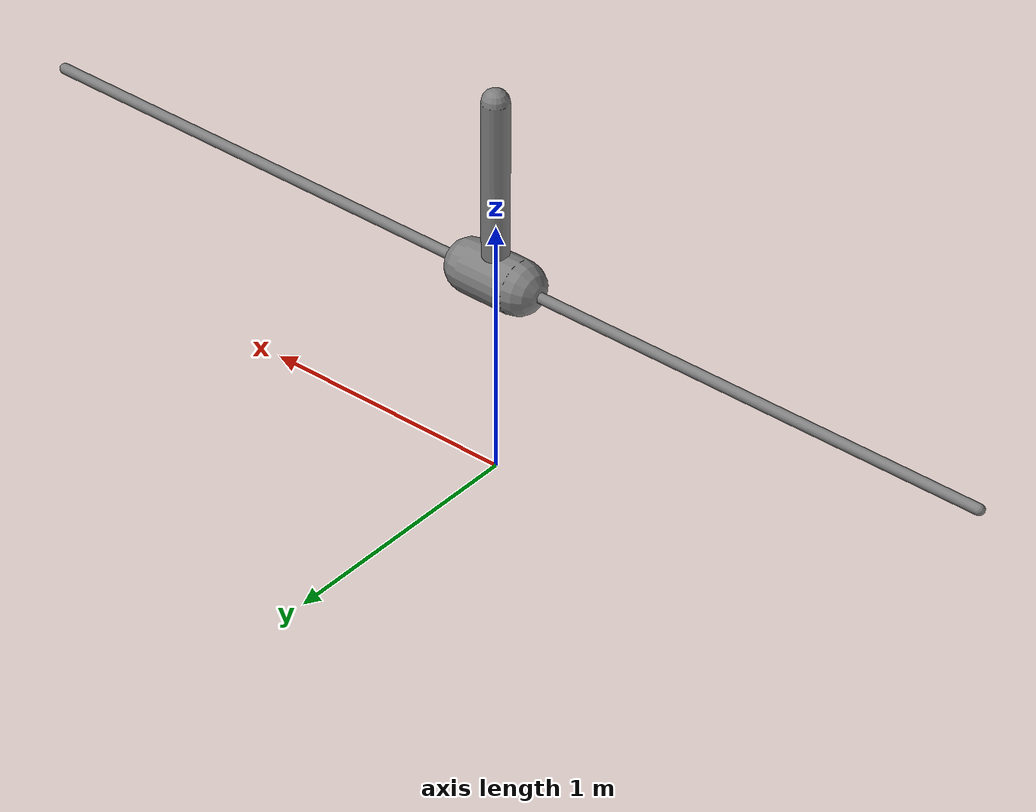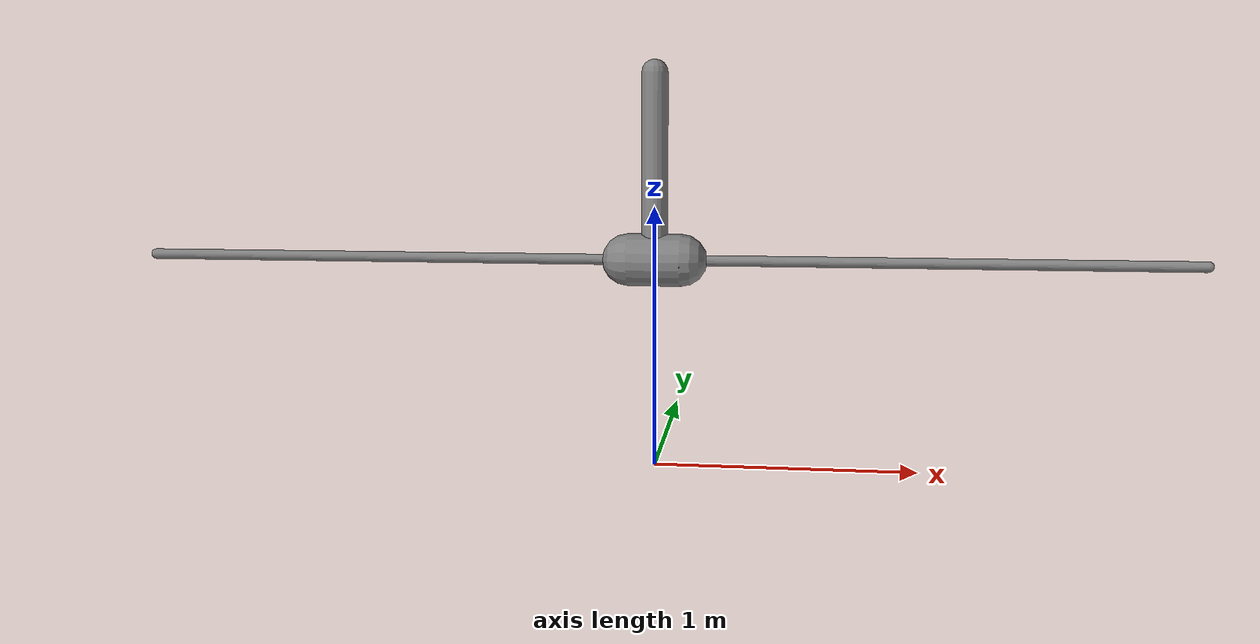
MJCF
<mujoco model="cart_pole">
    <option solver="Newton" timestep="0.02" iterations="1" ls_iterations="4" />
    <compiler inertiafromgeom="true" />
    <default>
        <joint armature="0" damping="1e-2" limited="true" />
        <geom contype="0" />
    </default>
    <size nstack="3000" />
    <worldbody>
        <camera name="camera" pos="0.0 6.0 0.8" xyaxes="-1.0 0.0 0.0 0.0 0.0 1.0" mode="fixed"/>
        <geom name="rail" pos="0 0 0.8" quat="0.707 0 0.707 0" size="0.02 2" type="capsule" />
        <body name="cart" pos="0 0 0.8">
            <joint axis="1 0 0" limited="true" name="slider" pos="0 0 0.1" range="-2 2" type="slide" />
            <geom name="cart" pos="0 0 0" quat="0.707 0 0.707 0" size="0.1 0.1" type="capsule" mass="1.0" />
            <body name="pole" pos="0 0 0">
                <joint axis="0 1 0" name="hinge" pos="0 0 0" range="-inf inf" type="hinge" />
                <geom fromto="0 0 0 0.001 0 0.7" name="cpole" size="0.05 0.3" type="capsule" mass="0.1"/>
            </body>
        </body>
    </worldbody>
    <actuator>
        <motor ctrllimited="true" ctrlrange="-1 1" gear="5" joint="slider" name="slide" />
    </actuator>
</mujoco>
